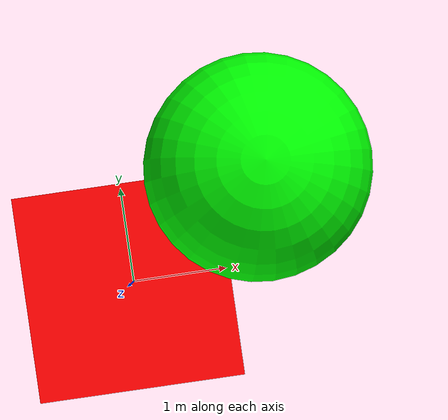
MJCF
<?xml version="1.0" ?>
<mujoco model="test_basic0">
    <compiler angle="radian" coordinate="local"/>
    <option timestep="0.002" iterations="100" integrator="Euler" cone="pyramidal" jacobian="dense" solver="Newton">
        <flag sensornoise="enable"/>
    </option>
    <size nconmax="-1" njmax="-1" nuserdata="100"/>
    <asset>
        <mesh name="mesh_Cube" file="mesh_stl/Cube.stl"/>
        <mesh name="mesh_Sphere.001" file="mesh_stl/Sphere.001.stl"/>
    </asset>
    <worldbody>
        <body name="red_box" pos="0.0 0.0 0.0" quat="1.0 0.0 0.0 0.0">
            <geom name="red_box" type="mesh" pos="0 0 0" quat="1 0 0 0" rgba="1.0 0.0 0.001875498564913869 1.0" mass="1.0" contype="1" conaffinity="1" mesh="mesh_Cube"/>
            <body name="green_sphere" pos="1.3320555686950684 0.9124094843864441 1.8887747526168823" quat="1.0 0.0 0.0 0.0">
                <geom name="green_sphere" type="mesh" pos="0 0 0" quat="1 0 0 0" rgba="0.0 1.0 0.002928026719018817 1.0" mass="1.0" contype="1" conaffinity="1" mesh="mesh_Sphere.001"/>
            </body>
        </body>
        <light directional="true" cutoff="4" exponent="20" diffuse="1 1 1" specular="0 0 0" pos="0.9 0.3 2.5" dir="-0.9 -0.3 -2.5"/>
    </worldbody>
    <actuator/>
    <equality/>
    <sensor/>
</mujoco>
